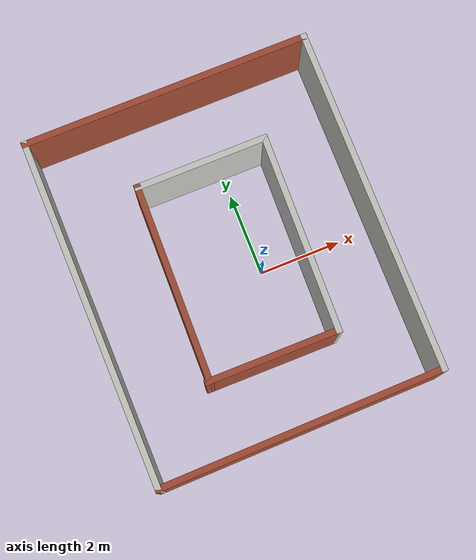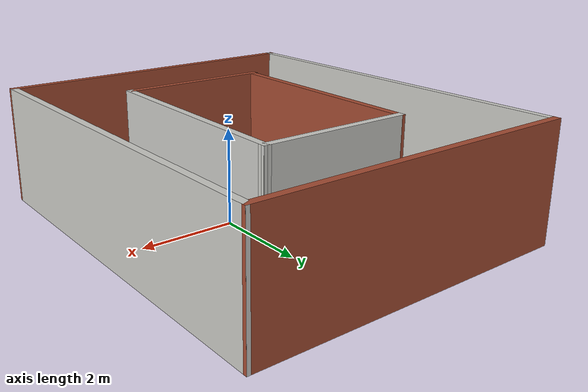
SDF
<?xml version='1.0'?>
<sdf version='1.6'>
  <model name='Untitled1'>
    <pose frame=''>-0.62786 0.235744 0 0 -0 0</pose>
    <link name='Wall_0'>
      <collision name='Wall_0_Collision'>
        <geometry>
          <box>
            <size>8.5 0.15 2.5</size>
          </box>
        </geometry>
        <pose frame=''>0 0 1.25 0 -0 0</pose>
      </collision>
      <visual name='Wall_0_Visual'>
        <pose frame=''>0 0 1.25 0 -0 0</pose>
        <geometry>
          <box>
            <size>8.5 0.15 2.5</size>
          </box>
        </geometry>
        <material>
          <script>
            <uri>file://media/materials/scripts/gazebo.material</uri>
            <name>Gazebo/CeilingTiled</name>
          </script>
          <ambient>0.996078 0.47451 0.0196078 1</ambient>
        </material>
        <meta>
          <layer>0</layer>
        </meta>
      </visual>
      <pose frame=''>-3.44554 0.000523 0 0 0 -1.5708</pose>
    </link>
    <link name='Wall_10'>
      <collision name='Wall_10_Collision'>
        <geometry>
          <box>
            <size>3.25 0.15 2.5</size>
          </box>
        </geometry>
        <pose frame=''>0 0 1.25 0 -0 0</pose>
      </collision>
      <visual name='Wall_10_Visual'>
        <pose frame=''>0 0 1.25 0 -0 0</pose>
        <geometry>
          <box>
            <size>3.25 0.15 2.5</size>
          </box>
        </geometry>
        <material>
          <script>
            <uri>file://media/materials/scripts/gazebo.material</uri>
            <name>Gazebo/CeilingTiled</name>
          </script>
          <ambient>0.435294 0.796078 0.67451 1</ambient>
        </material>
        <meta>
          <layer>0</layer>
        </meta>
      </visual>
      <pose frame=''>0.130108 2.30334 0 0 -0 0</pose>
    </link>
    <link name='Wall_11'>
      <collision name='Wall_11_Collision'>
        <geometry>
          <box>
            <size>4.83362 0.15 2.5</size>
          </box>
        </geometry>
        <pose frame=''>0 0 1.25 0 -0 0</pose>
      </collision>
      <visual name='Wall_11_Visual'>
        <pose frame=''>0 0 1.25 0 -0 0</pose>
        <geometry>
          <box>
            <size>4.83362 0.15 2.5</size>
          </box>
        </geometry>
        <material>
          <script>
            <uri>file://media/materials/scripts/gazebo.material</uri>
            <name>Gazebo/CeilingTiled</name>
          </script>
          <ambient>1 0.666667 1 1</ambient>
        </material>
        <meta>
          <layer>0</layer>
        </meta>
      </visual>
      <pose frame=''>1.63385 -0.038015 0 0 0 -1.59055</pose>
    </link>
    <link name='Wall_12'>
      <collision name='Wall_12_Collision'>
        <geometry>
          <box>
            <size>3.25 0.15 2.5</size>
          </box>
        </geometry>
        <pose frame=''>0 0 1.25 0 -0 0</pose>
      </collision>
      <visual name='Wall_12_Visual'>
        <pose frame=''>0 0 1.25 0 -0 0</pose>
        <geometry>
          <box>
            <size>3.25 0.15 2.5</size>
          </box>
        </geometry>
        <material>
          <script>
            <uri>file://media/materials/scripts/gazebo.material</uri>
            <name>Gazebo/Bricks</name>
          </script>
          <ambient>1 1 0.498039 1</ambient>
        </material>
        <meta>
          <layer>0</layer>
        </meta>
      </visual>
      <pose frame=''>-0.008676 -2.37937 0 0 -0 3.14159</pose>
    </link>
    <link name='Wall_13'>
      <collision name='Wall_13_Collision'>
        <geometry>
          <box>
            <size>4.83362 0.15 2.5</size>
          </box>
        </geometry>
        <pose frame=''>0 0 1.25 0 -0 0</pose>
      </collision>
      <visual name='Wall_13_Visual'>
        <pose frame=''>0 0 1.25 0 -0 0</pose>
        <geometry>
          <box>
            <size>4.83362 0.15 2.5</size>
          </box>
        </geometry>
        <material>
          <script>
            <uri>file://media/materials/scripts/gazebo.material</uri>
            <name>Gazebo/Bricks</name>
          </script>
          <ambient>0 1 1 1</ambient>
        </material>
        <meta>
          <layer>0</layer>
        </meta>
      </visual>
      <pose frame=''>-1.46615 -0.038015 0 0 -0 1.55104</pose>
    </link>
    <link name='Wall_3'>
      <collision name='Wall_3_Collision'>
        <geometry>
          <box>
            <size>7 0.15 2.5</size>
          </box>
        </geometry>
        <pose frame=''>0 0 1.25 0 -0 0</pose>
      </collision>
      <visual name='Wall_3_Visual'>
        <pose frame=''>0 0 1.25 0 -0 0</pose>
        <geometry>
          <box>
            <size>7 0.15 2.5</size>
          </box>
        </geometry>
        <material>
          <script>
            <uri>file://media/materials/scripts/gazebo.material</uri>
            <name>Gazebo/Bricks</name>
          </script>
          <ambient>0 0 0.498039 1</ambient>
        </material>
        <meta>
          <layer>0</layer>
        </meta>
      </visual>
      <pose frame=''>-0.020542 4.17552 0 0 -0 3.14159</pose>
    </link>
    <link name='Wall_6'>
      <collision name='Wall_6_Collision'>
        <geometry>
          <box>
            <size>8.36836 0.15 2.5</size>
          </box>
        </geometry>
        <pose frame=''>0 0 1.25 0 -0 0</pose>
      </collision>
      <visual name='Wall_6_Visual'>
        <pose frame=''>0 0 1.25 0 -0 0</pose>
        <geometry>
          <box>
            <size>8.36836 0.15 2.5</size>
          </box>
        </geometry>
        <material>
          <script>
            <uri>file://media/materials/scripts/gazebo.material</uri>
            <name>Gazebo/CeilingTiled</name>
          </script>
          <ambient>1 1 0 1</ambient>
        </material>
        <meta>
          <layer>0</layer>
        </meta>
      </visual>
      <pose frame=''>3.425 0.066396 0 0 -0 1.5758</pose>
    </link>
    <link name='Wall_8'>
      <collision name='Wall_8_Collision'>
        <geometry>
          <box>
            <size>7.04234 0.15 2.5</size>
          </box>
        </geometry>
        <pose frame=''>0 0 1.25 0 -0 0</pose>
      </collision>
      <visual name='Wall_8_Visual'>
        <pose frame=''>0 0 1.25 0 -0 0</pose>
        <geometry>
          <box>
            <size>7.04234 0.15 2.5</size>
          </box>
        </geometry>
        <material>
          <script>
            <uri>file://media/materials/scripts/gazebo.material</uri>
            <name>Gazebo/Bricks</name>
          </script>
          <ambient>0.666667 0 0 1</ambient>
        </material>
        <meta>
          <layer>0</layer>
        </meta>
      </visual>
      <pose frame=''>0 -4.1086 0 0 -0 0.019116</pose>
    </link>
    <static>1</static>
  </model>
</sdf>
